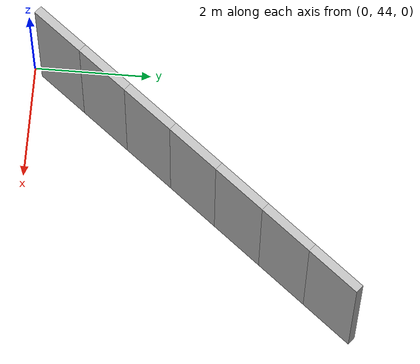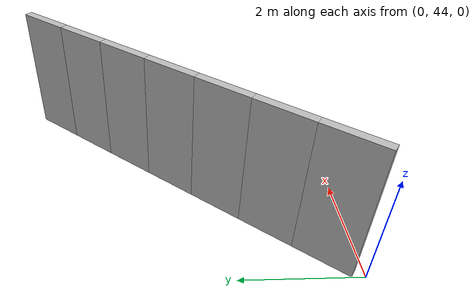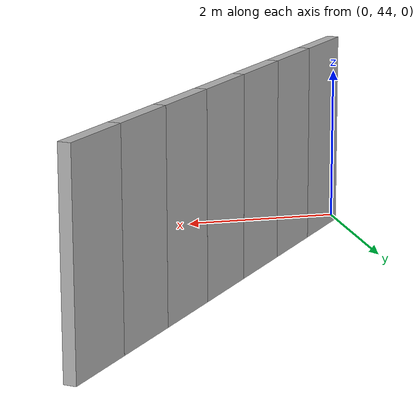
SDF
<?xml version="1.0" ?>
<sdf version="1.6">
  <model name="sps_0737">
    <pose frame="">0 0 0 0 -0 0</pose>
    <static>1</static>
    <self_collide>0</self_collide>
    <allow_auto_disable>0</allow_auto_disable>
    <link name="Wall10033">
      <kinematic>0</kinematic>
      <gravity>1</gravity>
      <self_collide>0</self_collide>
      <collision name="collision">
        <geometry>
          <box>
            <size>1.0141 0.15 2.5</size>
          </box>
        </geometry>
        <pose frame="">0 0 0 0 -0 0</pose>
      </collision>
      <visual name="visual">
        <geometry>
          <box>
            <size>1.0141 0.15 2.5</size>
          </box>
        </geometry>
        <pose frame="">0 0 0 0 -0 0</pose>
        <cast_shadows>1</cast_shadows>
        <transparency>0.0</transparency>
      </visual>
      <pose frame="">4.19695 49.3175 1.25 0 0 -2.25045</pose>
    </link>
    <link name="Wall10034">
      <kinematic>0</kinematic>
      <gravity>1</gravity>
      <self_collide>0</self_collide>
      <collision name="collision">
        <geometry>
          <box>
            <size>1.01438 0.15 2.5</size>
          </box>
        </geometry>
        <pose frame="">0 0 0 0 -0 0</pose>
      </collision>
      <visual name="visual">
        <geometry>
          <box>
            <size>1.01438 0.15 2.5</size>
          </box>
        </geometry>
        <pose frame="">0 0 0 0 -0 0</pose>
        <cast_shadows>1</cast_shadows>
        <transparency>0.0</transparency>
      </visual>
      <pose frame="">3.55987 48.5283 1.25 0 0 -2.24946</pose>
    </link>
    <link name="Wall10035">
      <kinematic>0</kinematic>
      <gravity>1</gravity>
      <self_collide>0</self_collide>
      <collision name="collision">
        <geometry>
          <box>
            <size>1.01413 0.15 2.5</size>
          </box>
        </geometry>
        <pose frame="">0 0 0 0 -0 0</pose>
      </collision>
      <visual name="visual">
        <geometry>
          <box>
            <size>1.01413 0.15 2.5</size>
          </box>
        </geometry>
        <pose frame="">0 0 0 0 -0 0</pose>
        <cast_shadows>1</cast_shadows>
        <transparency>0.0</transparency>
      </visual>
      <pose frame="">2.92367 47.7384 1.25 0 0 -2.24819</pose>
    </link>
    <link name="Wall10036">
      <kinematic>0</kinematic>
      <gravity>1</gravity>
      <self_collide>0</self_collide>
      <collision name="collision">
        <geometry>
          <box>
            <size>1.01406 0.15 2.5</size>
          </box>
        </geometry>
        <pose frame="">0 0 0 0 -0 0</pose>
      </collision>
      <visual name="visual">
        <geometry>
          <box>
            <size>1.01406 0.15 2.5</size>
          </box>
        </geometry>
        <pose frame="">0 0 0 0 -0 0</pose>
        <cast_shadows>1</cast_shadows>
        <transparency>0.0</transparency>
      </visual>
      <pose frame="">2.28844 46.9479 1.25 0 0 -2.24724</pose>
    </link>
    <link name="Wall10037">
      <kinematic>0</kinematic>
      <gravity>1</gravity>
      <self_collide>0</self_collide>
      <collision name="collision">
        <geometry>
          <box>
            <size>1.0142 0.15 2.5</size>
          </box>
        </geometry>
        <pose frame="">0 0 0 0 -0 0</pose>
      </collision>
      <visual name="visual">
        <geometry>
          <box>
            <size>1.0142 0.15 2.5</size>
          </box>
        </geometry>
        <pose frame="">0 0 0 0 -0 0</pose>
        <cast_shadows>1</cast_shadows>
        <transparency>0.0</transparency>
      </visual>
      <pose frame="">1.65404 46.1567 1.25 0 0 -2.24605</pose>
    </link>
    <link name="Wall10038">
      <kinematic>0</kinematic>
      <gravity>1</gravity>
      <self_collide>0</self_collide>
      <collision name="collision">
        <geometry>
          <box>
            <size>1.01413 0.15 2.5</size>
          </box>
        </geometry>
        <pose frame="">0 0 0 0 -0 0</pose>
      </collision>
      <visual name="visual">
        <geometry>
          <box>
            <size>1.01413 0.15 2.5</size>
          </box>
        </geometry>
        <pose frame="">0 0 0 0 -0 0</pose>
        <cast_shadows>1</cast_shadows>
        <transparency>0.0</transparency>
      </visual>
      <pose frame="">1.02047 45.3648 1.25 0 0 -2.2451</pose>
    </link>
    <link name="Wall10039">
      <kinematic>0</kinematic>
      <gravity>1</gravity>
      <self_collide>0</self_collide>
      <collision name="collision">
        <geometry>
          <box>
            <size>1.01434 0.15 2.5</size>
          </box>
        </geometry>
        <pose frame="">0 0 0 0 -0 0</pose>
      </collision>
      <visual name="visual">
        <geometry>
          <box>
            <size>1.01434 0.15 2.5</size>
          </box>
        </geometry>
        <pose frame="">0 0 0 0 -0 0</pose>
        <cast_shadows>1</cast_shadows>
        <transparency>0.0</transparency>
      </visual>
      <pose frame="">0.387656 44.5722 1.25 0 0 -2.24401</pose>
    </link>
  </model>
</sdf>
